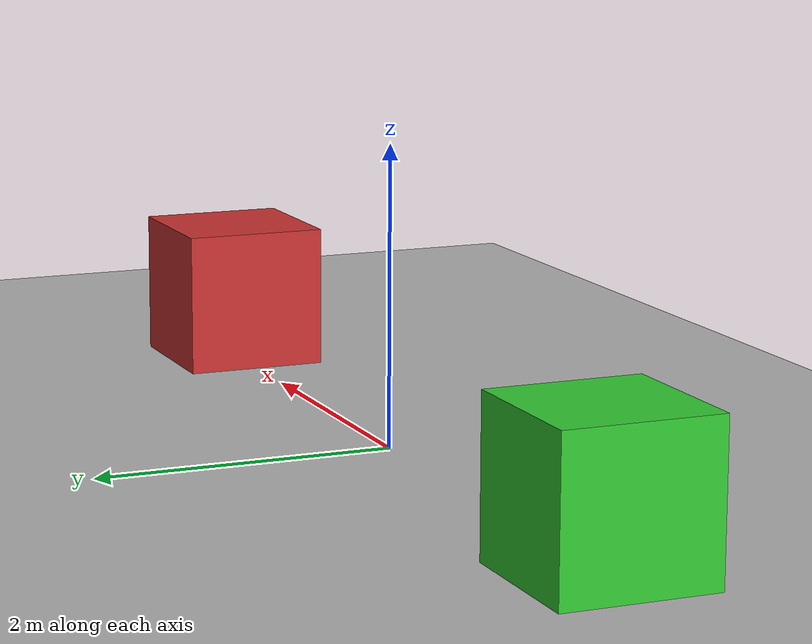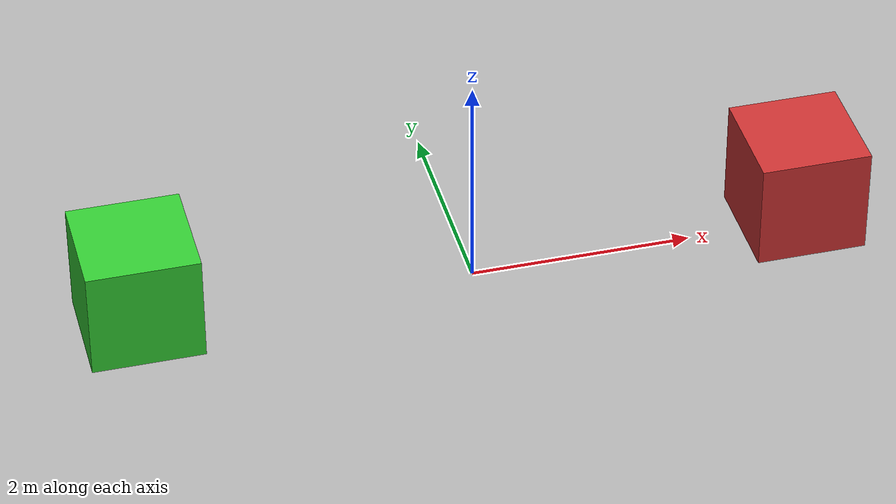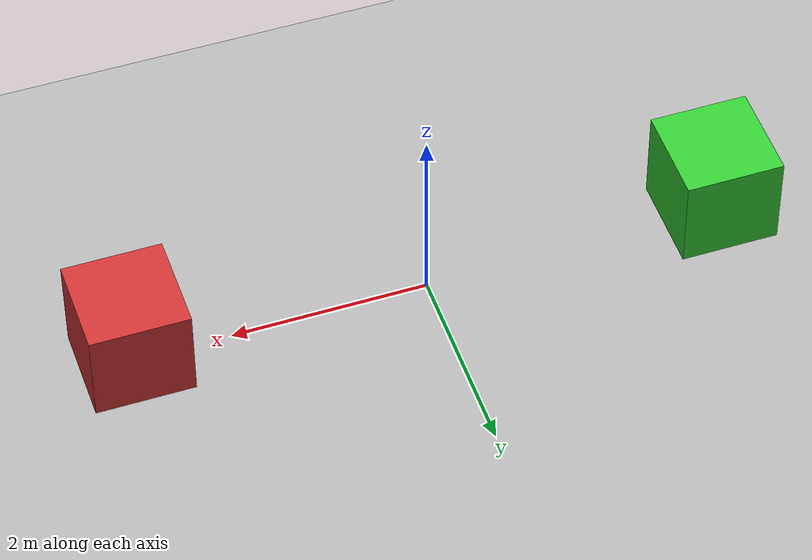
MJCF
<mujoco>
  <option gravity="0 0 -9.81"/>
  <worldbody>
    <body name="surface" pos="0 0 -0.1">
      <geom type="plane" size="25 25 0.1" rgba="0.7 0.7 0.7 1" friction="0.9 0.9 0.9"/>
    </body>
    <body name="block1" pos="-3 0 0.5">
      <geom type="box" size="0.5 0.5 0.5" density="5" rgba="0.2 0.8 0.2 1"/>
      <joint name="b1_joint" type="free"/>
    </body>
    <body name="block2" pos="3 0 0.5">
      <geom type="box" size="0.5 0.5 0.5" density="5" rgba="0.8 0.2 0.2 1"/>
      <joint name="b2_joint" type="free"/>
    </body>
  </worldbody>
</mujoco>
